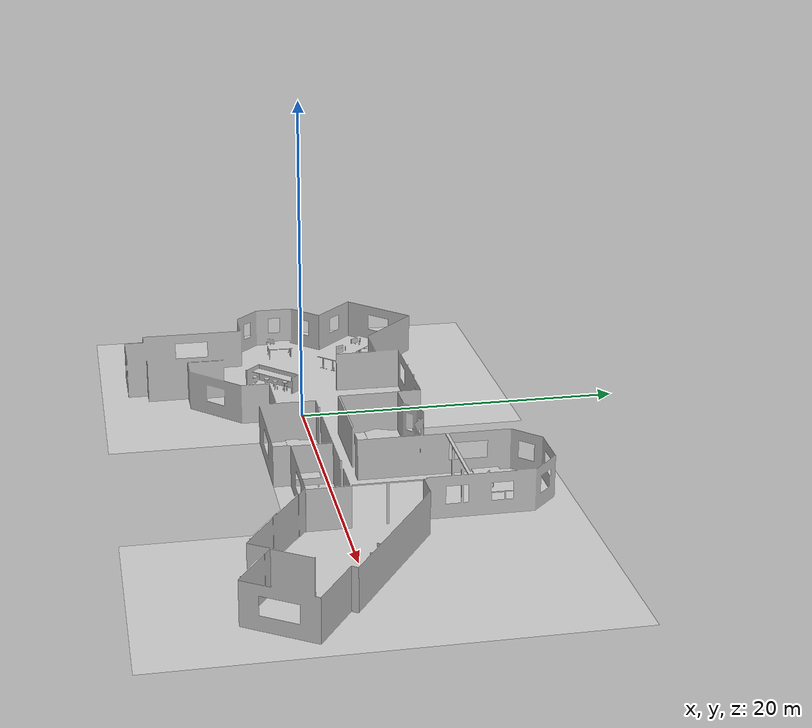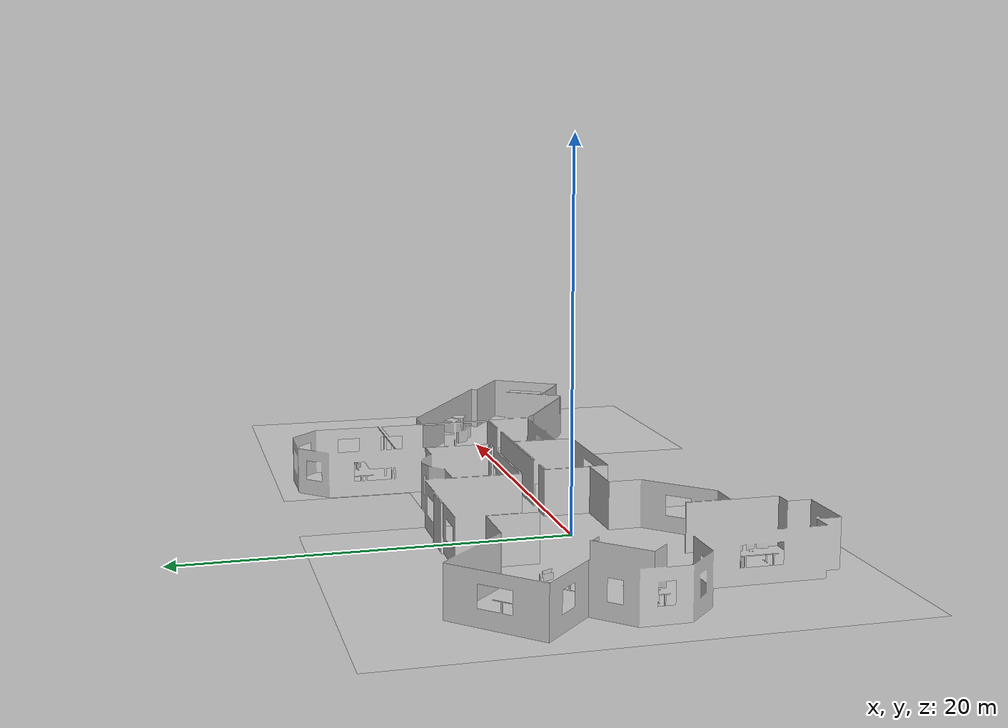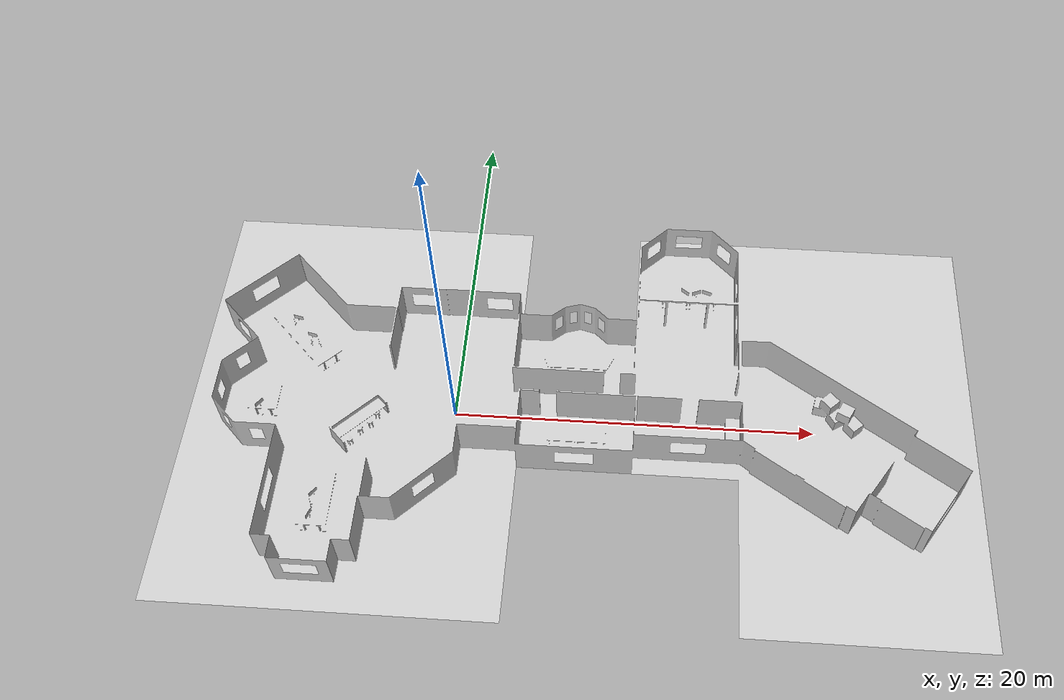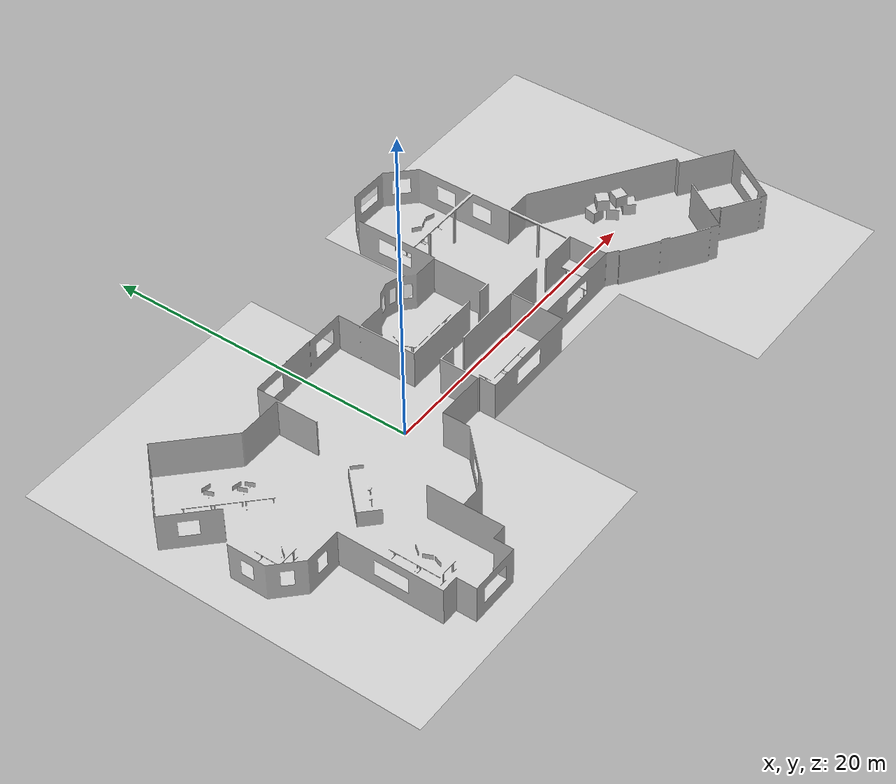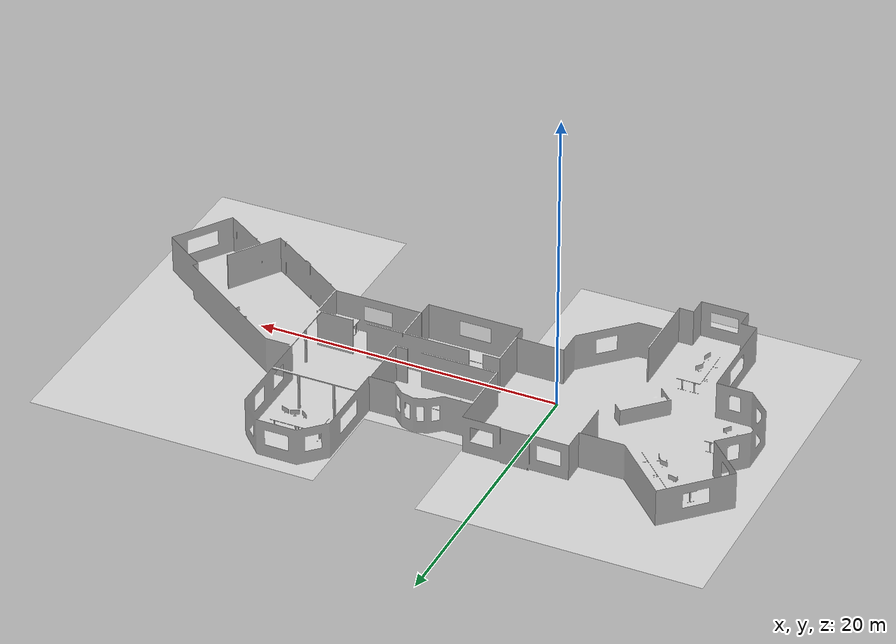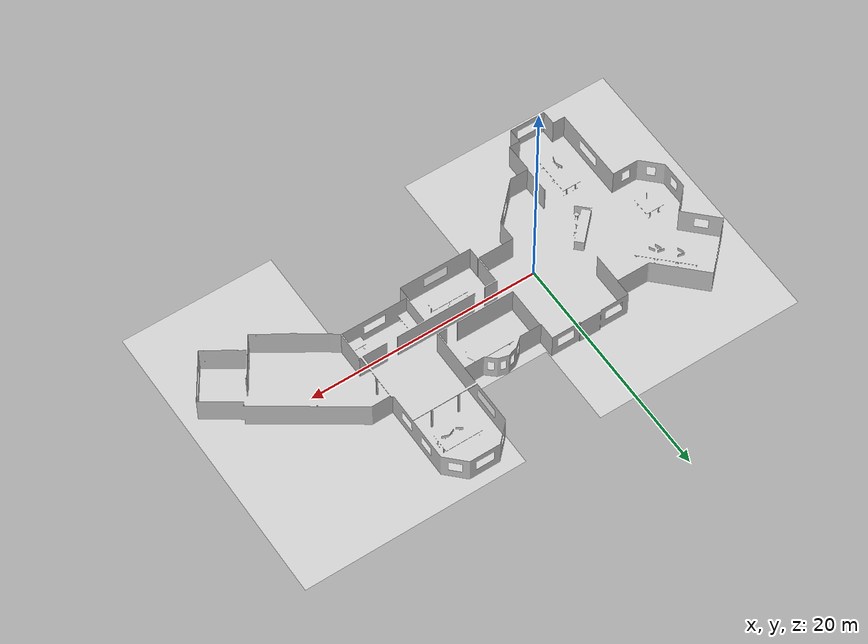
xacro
<?xml version="1.0"?>
<robot name="office_world" xmlns:xacro="http://www.ros.org/wiki/xacro">
  <link name="office_world_link">
    <inertial>
      <origin xyz="0 0 0" rpy="0 0 0"/>
      <mass value="1"/>
      <inertia ixx="1" ixy="0" ixz="0" iyy="1" iyz="0" izz="1"/>
    </inertial>
    <visual>
      <origin xyz="0 0 0" rpy="0 0 0"/>
      <geometry>
        <mesh filename="$(find core_gazebo_world)/models/custom_office/meshes/office.dae"/>
      </geometry>
    </visual>
    <collision>
      <origin xyz="0 0 0" rpy="0 0 0"/>
      <geometry>
        <mesh filename="$(find core_gazebo_world)/models/custom_office/meshes/office.dae"/>
      </geometry>
      <surface>
        <friction>
          <ode>
            <mu>100</mu>
            <mu2>50</mu2>
          </ode>
        </friction>
      </surface>
    </collision>
  </link>
  <gazebo> <static>true</static></gazebo>
</robot>
